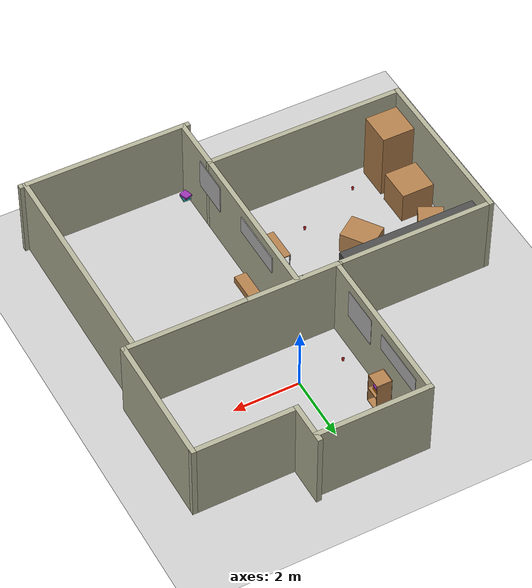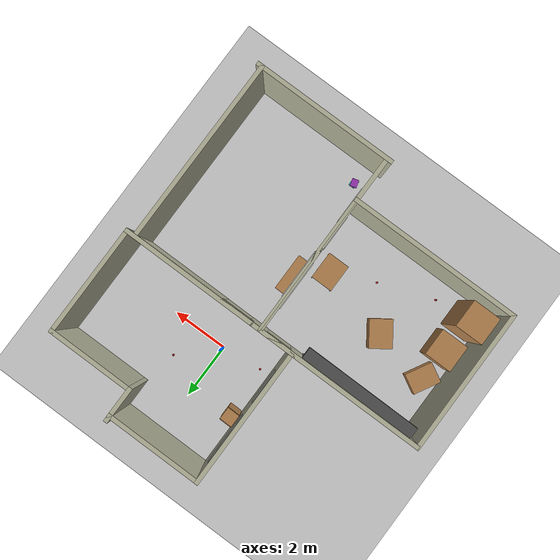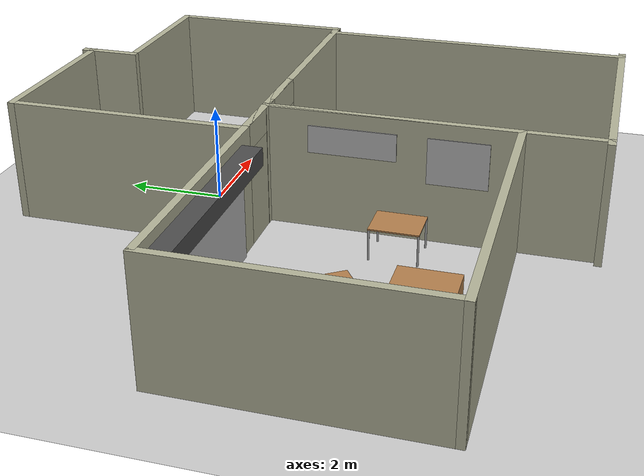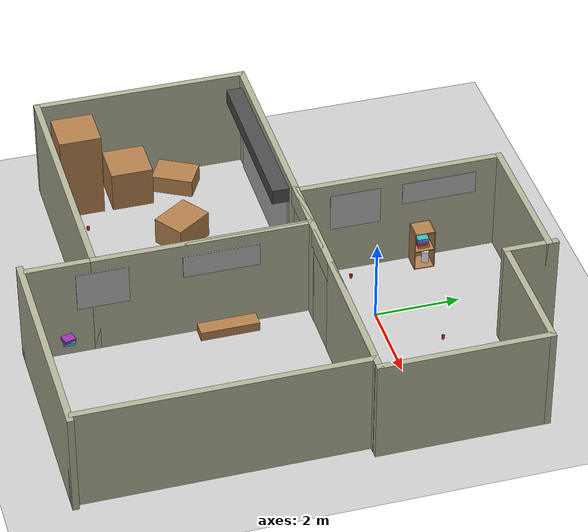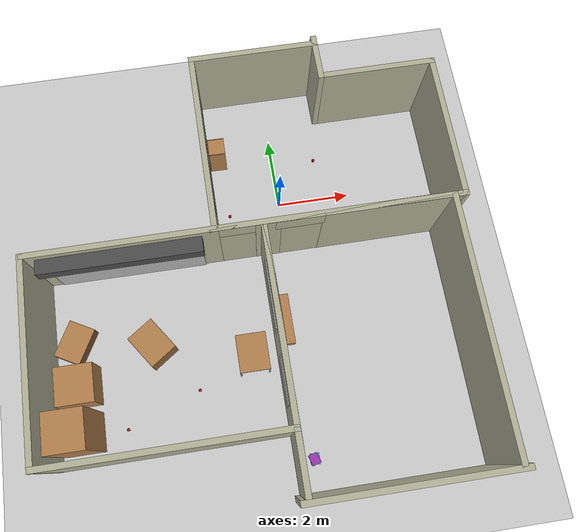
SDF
<sdf version="1.6">
 <world name="default">
  <model name="ground_plane">
   <static>1</static>
   <link name="link">
    <collision name="collision">
     <geometry><plane><normal>0 0 1</normal><size>20 20</size></plane></geometry>
     <surface>
      <contact><collide_bitmask>65535</collide_bitmask></contact>
      <friction><ode><mu>400</mu><mu2>50</mu2></ode></friction>
     </surface>
    </collision>
    <visual name="visual">
     <cast_shadows>0</cast_shadows>
     <geometry><plane><normal>0 0 1</normal><size>20 20</size></plane></geometry>
     <material>
      <script><uri>file://media/materials/scripts/gazebo.material</uri><name>Gazebo/Grey</name></script>
     </material>
    </visual>
   </link>
  </model>
  <model name="kitchen_living_room_walls">
   <pose>1.30504 1.07916 0 0 -0 0</pose>
   <link name="Wall_14">
    <collision name="Wall_14_Collision">
     <geometry><box><size>5 0.15 2.5</size></box></geometry>
     <pose>0 0 1.25 0 -0 0</pose>
    </collision>
    <visual name="Wall_14_Visual">
     <pose>0 0 1.25 0 -0 0</pose>
     <geometry><box><size>5 0.15 2.5</size></box></geometry>
     <material>
      <script><uri>file://media/materials/scripts/gazebo.material</uri><name>Gazebo/Residential</name></script>
      <ambient>1 1 1 1</ambient>
     </material>
     <meta><layer>0</layer></meta>
    </visual>
    <pose>-3.175 0 0 0 -0 -1.5708</pose>
   </link>
   <link name="Wall_15">
    <collision name="Wall_15_Collision">
     <geometry><box><size>6.5 0.15 2.5</size></box></geometry>
     <pose>0 0 1.25 0 -0 0</pose>
    </collision>
    <visual name="Wall_15_Visual">
     <pose>0 0 1.25 0 -0 0</pose>
     <geometry><box><size>6.5 0.15 2.5</size></box></geometry>
     <material>
      <script><uri>file://media/materials/scripts/gazebo.material</uri><name>Gazebo/Residential</name></script>
      <ambient>1 1 1 1</ambient>
     </material>
     <meta><layer>0</layer></meta>
    </visual>
    <pose>0 -2.425 0 0 -0 0</pose>
   </link>
   <link name="Wall_16">
    <collision name="Wall_16_Collision">
     <geometry><box><size>4 0.15 2.5</size></box></geometry>
     <pose>0 0 1.25 0 -0 0</pose>
    </collision>
    <visual name="Wall_16_Visual">
     <pose>0 0 1.25 0 -0 0</pose>
     <geometry><box><size>4 0.15 2.5</size></box></geometry>
     <material>
      <script><uri>file://media/materials/scripts/gazebo.material</uri><name>Gazebo/Residential</name></script>
      <ambient>1 1 1 1</ambient>
     </material>
     <meta><layer>0</layer></meta>
    </visual>
    <pose>3.175 -0.5 0 0 -0 1.5708</pose>
   </link>
   <link name="Wall_17">
    <collision name="Wall_17_Collision">
     <geometry><box><size>3 0.15 2.5</size></box></geometry>
     <pose>0 0 1.25 0 -0 0</pose>
    </collision>
    <visual name="Wall_17_Visual">
     <pose>0 0 1.25 0 -0 0</pose>
     <geometry><box><size>3 0.15 2.5</size></box></geometry>
     <material>
      <script><uri>file://media/materials/scripts/gazebo.material</uri><name>Gazebo/Residential</name></script>
      <ambient>1 1 1 1</ambient>
     </material>
     <meta><layer>0</layer></meta>
    </visual>
    <pose>1.75 1.425 0 0 -0 3.14159</pose>
   </link>
   <link name="Wall_19">
    <collision name="Wall_19_Collision">
     <geometry><box><size>3.5 0.15 2.5</size></box></geometry>
     <pose>0 0 1.25 0 -0 0</pose>
    </collision>
    <visual name="Wall_19_Visual">
     <pose>0 0 1.25 0 -0 0</pose>
     <geometry><box><size>3.5 0.15 2.5</size></box></geometry>
     <material>
      <script><uri>file://media/materials/scripts/gazebo.material</uri><name>Gazebo/Residential</name></script>
      <ambient>1 1 1 1</ambient>
     </material>
     <meta><layer>0</layer></meta>
    </visual>
    <pose>-1.5 2.425 0 0 -0 0</pose>
   </link>
   <link name="Wall_20">
    <collision name="Wall_20_Collision">
     <geometry><box><size>1.3 0.15 2.5</size></box></geometry>
     <pose>0 0 1.25 0 -0 0</pose>
    </collision>
    <visual name="Wall_20_Visual">
     <pose>0 0 1.25 0 -0 0</pose>
     <geometry><box><size>1.3 0.15 2.5</size></box></geometry>
     <material>
      <script><uri>file://media/materials/scripts/gazebo.material</uri><name>Gazebo/Residential</name></script>
      <ambient>1 1 1 1</ambient>
     </material>
     <meta><layer>0</layer></meta>
    </visual>
    <pose>0.175 2 0 0 -0 -1.5708</pose>
   </link>
   <static>1</static>
  </model>
  <model name="cabinet">
   <static>1</static>
   <link name="cabinet_bottom_plate">
    <inertial>
     <pose>0 0 -1 0 -0 0</pose>
     <inertia><ixx>2.05</ixx><ixy>0</ixy><ixz>0</ixz><iyy>2.05</iyy><iyz>0</iyz><izz>2.05</izz></inertia>
     <mass>25</mass>
    </inertial>
    <collision name="cabinet_bottom_plate_geom">
     <pose>0 0 0.01 0 -0 0</pose>
     <geometry><box><size>0.45 0.45 0.02</size></box></geometry>
    </collision>
    <visual name="cabinet_bottom_plate_geom_visual">
     <pose>0 0 0.01 0 -0 0</pose>
     <geometry><box><size>0.45 0.45 0.02</size></box></geometry>
     <material>
      <script><uri>file://media/materials/scripts/gazebo.material</uri><name>Gazebo/Wood</name></script>
     </material>
    </visual>
    <collision name="cabinet_bottom_plate_geom_cabinet_back_plate">
     <pose>0.235 0 0.51 0 -0 0</pose>
     <geometry><box><size>0.02 0.45 1.02</size></box></geometry>
    </collision>
    <visual name="cabinet_bottom_plate_geom_cabinet_back_plate_visual">
     <pose>0.235 0 0.51 0 -0 0</pose>
     <geometry><box><size>0.02 0.45 1.02</size></box></geometry>
     <material>
      <script><uri>file://media/materials/scripts/gazebo.material</uri><name>Gazebo/Wood</name></script>
     </material>
    </visual>
    <collision name="cabinet_bottom_plate_geom_cabinet_left_plate">
     <pose>0 0.235 0.51 0 -0 0</pose>
     <geometry><box><size>0.45 0.02 1.02</size></box></geometry>
    </collision>
    <visual name="cabinet_bottom_plate_geom_cabinet_left_plate_visual">
     <pose>0 0.235 0.51 0 -0 0</pose>
     <geometry><box><size>0.45 0.02 1.02</size></box></geometry>
     <material>
      <script><uri>file://media/materials/scripts/gazebo.material</uri><name>Gazebo/Wood</name></script>
     </material>
    </visual>
    <collision name="cabinet_bottom_plate_geom_cabinet_middle_plate">
     <pose>0 0 0.51 0 -0 0</pose>
     <geometry><box><size>0.45 0.45 0.02</size></box></geometry>
    </collision>
    <visual name="cabinet_bottom_plate_geom_cabinet_middle_plate_visual">
     <pose>0 0 0.51 0 -0 0</pose>
     <geometry><box><size>0.45 0.45 0.02</size></box></geometry>
     <material>
      <script><uri>file://media/materials/scripts/gazebo.material</uri><name>Gazebo/Wood</name></script>
     </material>
    </visual>
    <collision name="cabinet_bottom_plate_geom_cabinet_right_plate">
     <pose>0 -0.235 0.51 0 -0 0</pose>
     <geometry><box><size>0.45 0.02 1.02</size></box></geometry>
    </collision>
    <visual name="cabinet_bottom_plate_geom_cabinet_right_plate_visual">
     <pose>0 -0.235 0.51 0 -0 0</pose>
     <geometry><box><size>0.45 0.02 1.02</size></box></geometry>
     <material>
      <script><uri>file://media/materials/scripts/gazebo.material</uri><name>Gazebo/Wood</name></script>
     </material>
    </visual>
    <collision name="cabinet_bottom_plate_geom_cabinet_top_plate">
     <pose>0 0 1.01 0 -0 0</pose>
     <geometry><box><size>0.45 0.45 0.02</size></box></geometry>
    </collision>
    <visual name="cabinet_bottom_plate_geom_cabinet_top_plate_visual">
     <pose>0 0 1.01 0 -0 0</pose>
     <geometry><box><size>0.45 0.45 0.02</size></box></geometry>
     <material>
      <script><uri>file://media/materials/scripts/gazebo.material</uri><name>Gazebo/Wood</name></script>
     </material>
    </visual>
    <velocity_decay><linear>0</linear><angular>0</angular></velocity_decay>
   </link>
   <pose>-1.54168 1.59926 0 0 -0 3.12905</pose>
  </model>
  <model name="cup_glass_test_2">
   <link name="link_0">
    <inertial>
     <mass>0.0510344</mass>
     <inertia>
      <ixx>5.22719e-05</ixx>
      <ixy>0</ixy>
      <ixz>0</ixz>
      <iyy>5.22719e-05</iyy>
      <iyz>0</iyz>
      <izz>3.65038e-05</izz>
     </inertia>
     <pose>0 0 0.048 0 -0 0</pose>
    </inertial>
    <visual name="visual">
     <geometry><mesh><uri>model://cup_glass_test/meshes/cup_glass.dae</uri><scale>1 1 1</scale></mesh></geometry>
     <material>
      <lighting>1</lighting>
      <script><uri>file://media/materials/scripts/gazebo.material</uri><name>Gazebo/Red</name></script>
     </material>
    </visual>
    <collision name="collision">
     <geometry><mesh><uri>model://cup_glass_test/meshes/cup_glass.dae</uri><scale>1 1 1</scale></mesh></geometry>
     <surface>
      <friction>
       <ode><mu>1</mu><mu2>1</mu2><fdir1>0 0 0</fdir1><slip1>0</slip1><slip2>0</slip2></ode>
       <torsional>
        <coefficient>1</coefficient>
        <patch_radius>0</patch_radius>
        <surface_radius>0</surface_radius>
        <use_patch_radius>1</use_patch_radius>
        <ode><slip>0</slip></ode>
       </torsional>
      </friction>
      <bounce><restitution_coefficient>0</restitution_coefficient><threshold>1e+06</threshold></bounce>
      <contact>
       <collide_without_contact>0</collide_without_contact>
       <collide_without_contact_bitmask>1</collide_without_contact_bitmask>
       <collide_bitmask>1</collide_bitmask>
       <ode>
        <soft_cfm>0</soft_cfm>
        <soft_erp>0.2</soft_erp>
        <kp>1e+13</kp>
        <kd>1</kd>
        <max_vel>0.01</max_vel>
        <min_depth>0</min_depth>
       </ode>
       <bullet>
        <split_impulse>1</split_impulse>
        <split_impulse_penetration_threshold>-0.01</split_impulse_penetration_threshold>
        <soft_cfm>0</soft_cfm>
        <soft_erp>0.2</soft_erp>
        <kp>1e+13</kp>
        <kd>1</kd>
       </bullet>
      </contact>
     </surface>
    </collision>
   </link>
   <static>0</static>
   <pose>1.21724 1.22054 -0.000684 -0.01444 -0.014343 1.15451</pose>
  </model>
  <model name="cup_glass_test_3">
   <link name="link_0">
    <inertial>
     <mass>0.0510344</mass>
     <inertia>
      <ixx>5.22719e-05</ixx>
      <ixy>0</ixy>
      <ixz>0</ixz>
      <iyy>5.22719e-05</iyy>
      <iyz>0</iyz>
      <izz>3.65038e-05</izz>
     </inertia>
     <pose>0 0 0.048 0 -0 0</pose>
    </inertial>
    <visual name="visual">
     <geometry><mesh><uri>model://cup_glass_test/meshes/cup_glass.dae</uri><scale>1 1 1</scale></mesh></geometry>
     <material>
      <lighting>1</lighting>
      <script><uri>file://media/materials/scripts/gazebo.material</uri><name>Gazebo/Red</name></script>
     </material>
    </visual>
    <collision name="collision">
     <geometry><mesh><uri>model://cup_glass_test/meshes/cup_glass.dae</uri><scale>1 1 1</scale></mesh></geometry>
     <surface>
      <friction>
       <ode><mu>1</mu><mu2>1</mu2><fdir1>0 0 0</fdir1><slip1>0</slip1><slip2>0</slip2></ode>
       <torsional>
        <coefficient>1</coefficient>
        <patch_radius>0</patch_radius>
        <surface_radius>0</surface_radius>
        <use_patch_radius>1</use_patch_radius>
        <ode><slip>0</slip></ode>
       </torsional>
      </friction>
      <bounce><restitution_coefficient>0</restitution_coefficient><threshold>1e+06</threshold></bounce>
      <contact>
       <collide_without_contact>0</collide_without_contact>
       <collide_without_contact_bitmask>1</collide_without_contact_bitmask>
       <collide_bitmask>1</collide_bitmask>
       <ode>
        <soft_cfm>0</soft_cfm>
        <soft_erp>0.2</soft_erp>
        <kp>1e+13</kp>
        <kd>1</kd>
        <max_vel>0.01</max_vel>
        <min_depth>0</min_depth>
       </ode>
       <bullet>
        <split_impulse>1</split_impulse>
        <split_impulse_penetration_threshold>-0.01</split_impulse_penetration_threshold>
        <soft_cfm>0</soft_cfm>
        <soft_erp>0.2</soft_erp>
        <kp>1e+13</kp>
        <kd>1</kd>
       </bullet>
      </contact>
     </surface>
    </collision>
   </link>
   <static>0</static>
   <pose>-1.43676 -0.152813 -0.000684 -0.014465 -0.014205 1.24896</pose>
  </model>
  <model name="unit_box_1">
   <pose>-1.56462 1.68692 0.166864 -2e-06 -2e-06 -0.308094</pose>
   <link name="link">
    <inertial>
     <mass>1</mass>
     <inertia>
      <ixx>0.166667</ixx>
      <ixy>0</ixy>
      <ixz>0</ixz>
      <iyy>0.166667</iyy>
      <iyz>0</iyz>
      <izz>0.166667</izz>
     </inertia>
    </inertial>
    <collision name="collision"><geometry><box><size>0.157314 0.16474 0.293728</size></box></geometry></collision>
    <visual name="visual">
     <geometry><box><size>0.157314 0.16474 0.293728</size></box></geometry>
     <material>
      <script><name>Gazebo/White</name><uri>file://media/materials/scripts/gazebo.material</uri></script>
     </material>
    </visual>
   </link>
  </model>
  <model name="unit_box">
   <pose>-1.52024 1.60563 0.554916 0 0 -0.006062</pose>
   <link name="link">
    <inertial>
     <mass>1</mass>
     <inertia>
      <ixx>0.166667</ixx>
      <ixy>0</ixy>
      <ixz>0</ixz>
      <iyy>0.166667</iyy>
      <iyz>0</iyz>
      <izz>0.166667</izz>
     </inertia>
    </inertial>
    <collision name="collision"><geometry><box><size>0.230096 0.26666 0.069832</size></box></geometry></collision>
    <visual name="visual">
     <geometry><box><size>0.230096 0.26666 0.069832</size></box></geometry>
     <material>
      <script><name>Gazebo/Orange</name><uri>file://media/materials/scripts/gazebo.material</uri></script>
     </material>
    </visual>
   </link>
  </model>
  <model name="unit_box_clone_0">
   <pose>-1.58461 1.60891 0.694567 -4.7e-05 -3.7e-05 -0.035696</pose>
   <link name="link">
    <inertial>
     <mass>1</mass>
     <inertia>
      <ixx>0.166667</ixx>
      <ixy>0</ixy>
      <ixz>0</ixz>
      <iyy>0.166667</iyy>
      <iyz>0</iyz>
      <izz>0.166667</izz>
     </inertia>
    </inertial>
    <collision name="collision">
     <geometry><box><size>0.230096 0.266659 0.069832</size></box></geometry>
    </collision>
    <visual name="visual">
     <geometry><box><size>0.230096 0.266659 0.069832</size></box></geometry>
     <material>
      <script><name>Gazebo/Turquoise</name><uri>file://media/materials/scripts/gazebo.material</uri></script>
     </material>
    </visual>
   </link>
  </model>
  <model name="unit_box_clone_1">
   <pose>-1.53781 1.59018 0.624738 -4.3e-05 -4.3e-05 -0.021511</pose>
   <link name="link">
    <inertial>
     <mass>1</mass>
     <inertia>
      <ixx>0.166667</ixx>
      <ixy>0</ixy>
      <ixz>0</ixz>
      <iyy>0.166667</iyy>
      <iyz>0</iyz>
      <izz>0.166667</izz>
     </inertia>
    </inertial>
    <collision name="collision">
     <geometry><box><size>0.230096 0.266659 0.069832</size></box></geometry>
    </collision>
    <visual name="visual">
     <geometry><box><size>0.230096 0.266659 0.069832</size></box></geometry>
     <material>
      <script><name>Gazebo/Purple</name><uri>file://media/materials/scripts/gazebo.material</uri></script>
     </material>
    </visual>
   </link>
  </model>
  <model name="ufrgs_poster">
   <link name="link">
    <visual name="visual">
     <geometry><box><size>0.03 1.20154 0.949467</size></box></geometry>
     <material>
      <script>
       <uri>model://ufrgs_poster/material/script</uri>
       <uri>model://ufrgs_poster/material/textures</uri>
       <name>Custom/ufrgs_logo</name>
      </script>
     </material>
    </visual>
   </link>
   <static>1</static>
   <pose>-1.8013 0.035665 1.71741 0 -0 0</pose>
  </model>
  <model name="uio_poster">
   <link name="link">
    <visual name="visual">
     <geometry><box><size>0.03 1.76931 0.56609</size></box></geometry>
     <material>
      <script>
       <uri>model://uio_poster/material/script</uri>
       <uri>model://uio_poster/material/textures</uri>
       <name>Custom/uio_logo</name>
      </script>
     </material>
    </visual>
   </link>
   <static>1</static>
   <pose>-1.79613 2.0446 1.91099 0 -0 0</pose>
  </model>
  <model name="table">
   <static>1</static>
   <link name="link">
    <collision name="surface">
     <pose>0 0 0.8 0 -0 0</pose>
     <geometry><box><size>1 0.8 0.03</size></box></geometry>
    </collision>
    <visual name="visual1">
     <pose>0 0 0.8 0 -0 0</pose>
     <geometry><box><size>1 0.8 0.03</size></box></geometry>
     <material>
      <script><uri>file://media/materials/scripts/gazebo.material</uri><name>Gazebo/Wood</name></script>
     </material>
    </visual>
    <collision name="front_left_leg">
     <pose>0.48 0.38 0.4 0 -0 0</pose>
     <geometry><cylinder><radius>0.02</radius><length>0.8</length></cylinder></geometry>
    </collision>
    <visual name="front_left_leg">
     <pose>0.48 0.38 0.4 0 -0 0</pose>
     <geometry><cylinder><radius>0.02</radius><length>0.8</length></cylinder></geometry>
     <material>
      <script><uri>file://media/materials/scripts/gazebo.material</uri><name>Gazebo/Grey</name></script>
     </material>
    </visual>
    <collision name="front_right_leg">
     <pose>0.48 -0.38 0.4 0 -0 0</pose>
     <geometry><cylinder><radius>0.02</radius><length>0.8</length></cylinder></geometry>
    </collision>
    <visual name="front_right_leg">
     <pose>0.48 -0.38 0.4 0 -0 0</pose>
     <geometry><cylinder><radius>0.02</radius><length>0.8</length></cylinder></geometry>
     <material>
      <script><uri>file://media/materials/scripts/gazebo.material</uri><name>Gazebo/Grey</name></script>
     </material>
    </visual>
    <collision name="back_right_leg">
     <pose>-0.48 -0.38 0.4 0 -0 0</pose>
     <geometry><cylinder><radius>0.02</radius><length>0.8</length></cylinder></geometry>
    </collision>
    <visual name="back_right_leg">
     <pose>-0.48 -0.38 0.4 0 -0 0</pose>
     <geometry><cylinder><radius>0.02</radius><length>0.8</length></cylinder></geometry>
     <material>
      <script><uri>file://media/materials/scripts/gazebo.material</uri><name>Gazebo/Grey</name></script>
     </material>
    </visual>
    <collision name="back_left_leg">
     <pose>-0.48 0.38 0.4 0 -0 0</pose>
     <geometry><cylinder><radius>0.02</radius><length>0.8</length></cylinder></geometry>
    </collision>
    <visual name="back_left_leg">
     <pose>-0.48 0.38 0.4 0 -0 0</pose>
     <geometry><cylinder><radius>0.02</radius><length>0.8</length></cylinder></geometry>
     <material>
      <script><uri>file://media/materials/scripts/gazebo.material</uri><name>Gazebo/Grey</name></script>
     </material>
    </visual>
    <velocity_decay><linear>0</linear><angular>0</angular></velocity_decay>
   </link>
   <pose>-1.3695 -4.20071 -0.158695 0 0 -1.57177</pose>
  </model>
  <model name="bedroom_external_wall">
   <pose>1.775 -4.65242 0 0 -0 0</pose>
   <link name="Wall_0">
    <collision name="Wall_0_Collision">
     <geometry><box><size>6.75 0.15 2.5</size></box></geometry>
     <pose>0 0 1.25 0 -0 0</pose>
    </collision>
    <visual name="Wall_0_Visual">
     <pose>0 0 1.25 0 -0 0</pose>
     <geometry><box><size>6.75 0.15 2.5</size></box></geometry>
     <material>
      <script><uri>file://media/materials/scripts/gazebo.material</uri><name>Gazebo/Residential</name></script>
      <ambient>1 1 1 1</ambient>
     </material>
     <meta><layer>0</layer></meta>
    </visual>
    <pose>-2.425 0 0 0 -0 1.5708</pose>
   </link>
   <link name="Wall_2">
    <collision name="Wall_2_Collision">
     <geometry><box><size>5.25 0.15 2.5</size></box></geometry>
     <pose>0 0 1.25 0 -0 0</pose>
    </collision>
    <visual name="Wall_2_Visual">
     <pose>0 0 1.25 0 -0 0</pose>
     <geometry><box><size>5.25 0.15 2.5</size></box></geometry>
     <material>
      <script><uri>file://media/materials/scripts/gazebo.material</uri><name>Gazebo/Residential</name></script>
      <ambient>1 1 1 1</ambient>
     </material>
     <meta><layer>0</layer></meta>
    </visual>
    <pose>0 -3.3 0 0 -0 0</pose>
   </link>
   <link name="Wall_6">
    <collision name="Wall_6_Collision">
     <geometry><box><size>3.55 0.15 2.5</size></box></geometry>
     <pose>0.85 0 1.25 0 -0 0</pose>
    </collision>
    <visual name="Wall_6_Visual">
     <pose>0.85 0 1.25 0 -0 0</pose>
     <geometry><box><size>3.55 0.15 2.5</size></box></geometry>
     <material>
      <script><uri>file://media/materials/scripts/gazebo.material</uri><name>Gazebo/Residential</name></script>
      <ambient>1 1 1 1</ambient>
     </material>
     <meta><layer>0</layer></meta>
    </visual>
    <collision name="Wall_6_Collision_up">
     <geometry><box><size>1.25 0.15 0.5</size></box></geometry>
     <pose>-1.5 0 2.25 0 -0 0</pose>
    </collision>
    <visual name="Wall_6_Visual_up">
     <pose>-1.5 0 2.25 0 -0 0</pose>
     <geometry><box><size>1.25 0.15 0.5</size></box></geometry>
     <material>
      <script><uri>file://media/materials/scripts/gazebo.material</uri><name>Gazebo/Residential</name></script>
      <ambient>1 1 1 1</ambient>
     </material>
     <meta><layer>0</layer></meta>
    </visual>
    <collision name="Wall_6_Collision_small">
     <geometry><box><size>0.65 0.15 2.5</size></box></geometry>
     <pose>-2.31 0 1.25 0 -0 0</pose>
    </collision>
    <visual name="Wall_6_Visual_small">
     <pose>-2.31 0 1.25 0 -0 0</pose>
     <geometry><box><size>0.65 0.15 2.5</size></box></geometry>
     <material>
      <script><uri>file://media/materials/scripts/gazebo.material</uri><name>Gazebo/Residential</name></script>
      <ambient>1 1 1 1</ambient>
     </material>
     <meta><layer>0</layer></meta>
    </visual>
    <pose>0 3.3 0 0 -0 0</pose>
   </link>
   <link name="Wall_7">
    <collision name="Wall_7_Collision">
     <geometry><box><size>6.75 0.15 2.5</size></box></geometry>
     <pose>0 0 1.25 0 -0 0</pose>
    </collision>
    <visual name="Wall_7_Visual">
     <pose>0 0 1.25 0 -0 0</pose>
     <geometry><box><size>6.75 0.15 2.5</size></box></geometry>
     <material>
      <script><uri>file://media/materials/scripts/gazebo.material</uri><name>Gazebo/Residential</name></script>
      <ambient>1 1 1 1</ambient>
     </material>
     <meta><layer>0</layer></meta>
    </visual>
    <pose>2.425 0 0 0 -0 -1.5708</pose>
   </link>
   <static>1</static>
  </model>
  <model name="ufrgs_poster_clone">
   <link name="link">
    <visual name="visual">
     <geometry><box><size>0.03 1.20154 0.949467</size></box></geometry>
     <material>
      <script>
       <uri>model://ufrgs_poster/material/script</uri>
       <uri>model://ufrgs_poster/material/textures</uri>
       <name>Custom/ufrgs_logo</name>
      </script>
     </material>
    </visual>
   </link>
   <static>1</static>
   <pose>-0.567822 -6.17374 1.71741 0 -0 0</pose>
  </model>
  <model name="uio_poster_clone">
   <link name="link">
    <visual name="visual">
     <geometry><box><size>0.03 1.76931 0.56609</size></box></geometry>
     <material>
      <script>
       <uri>model://uio_poster/material/script</uri>
       <uri>model://uio_poster/material/textures</uri>
       <name>Custom/uio_logo</name>
      </script>
     </material>
    </visual>
   </link>
   <static>1</static>
   <pose>-0.563959 -3.45572 1.91099 0 -0 0</pose>
  </model>
  <model name="garage_external_wall">
   <pose>-3.64936 -1.34584 0 0 0 -1.57082</pose>
   <link name="Wall_0">
    <pose>0 0 0 0 -0 1.5708</pose>
    <visual name="Wall_0_Visual_0">
     <pose>-0.585 0 1.25 0 -0 0</pose>
     <geometry><box><size>4.9 0.15 2.5</size></box></geometry>
     <material>
      <script><uri>file://media/materials/scripts/gazebo.material</uri><name>Gazebo/Residential</name></script>
      <ambient>1 1 1 1</ambient>
     </material>
     <meta><layer>0</layer></meta>
    </visual>
    <collision name="Wall_0_Collision_0">
     <geometry><box><size>4.9 0.15 2.5</size></box></geometry>
     <pose>-0.585 0 1.25 0 -0 0</pose>
    </collision>
    <visual name="Wall_0_Visual_1">
     <pose>3 0 1.25 0 -0 0</pose>
     <geometry><box><size>0.15 0.15 2.5</size></box></geometry>
     <material>
      <script><uri>file://media/materials/scripts/gazebo.material</uri><name>Gazebo/Residential</name></script>
      <ambient>1 1 1 1</ambient>
     </material>
     <meta><layer>0</layer></meta>
    </visual>
    <collision name="Wall_0_Collision_1">
     <geometry><box><size>0.15 0.15 2.5</size></box></geometry>
     <pose>3 0 1.25 0 -0 0</pose>
    </collision>
    <visual name="Wall_0_Visual_2">
     <pose>2.325 0 2.25 0 -0 0</pose>
     <geometry><box><size>1.35 0.15 0.5</size></box></geometry>
     <material>
      <script><uri>file://media/materials/scripts/gazebo.material</uri><name>Gazebo/Residential</name></script>
      <ambient>1 1 1 1</ambient>
     </material>
     <meta><layer>0</layer></meta>
    </visual>
    <collision name="Wall_0_Collision_2">
     <geometry><box><size>1.35 0.15 0.5</size></box></geometry>
     <pose>2.325 0 2.25 0 -0 0</pose>
    </collision>
   </link>
   <link name="Wall_1">
    <pose>0 0 0 0 -0 1.5708</pose>
    <visual name="Wall_1_Visual">
     <pose>0 -5 1.25 0 -0 0</pose>
     <geometry><box><size>6.15 0.15 2.5</size></box></geometry>
     <material>
      <script><uri>file://media/materials/scripts/gazebo.material</uri><name>Gazebo/Residential</name></script>
      <ambient>1 1 1 1</ambient>
     </material>
     <meta><layer>0</layer></meta>
    </visual>
    <collision name="Wall_1_Collision">
     <geometry><box><size>6.15 0.15 2.5</size></box></geometry>
     <pose>0 -5 1.25 0 -0 0</pose>
    </collision>
   </link>
   <link name="Wall_2">
    <pose>0 0 0 0 -0 1.5708</pose>
    <visual name="Wall_2_Visual">
     <pose>3 -2.5 1.25 0 -0 0</pose>
     <geometry><box><size>0.15 5.15 2.5</size></box></geometry>
     <material>
      <script><uri>file://media/materials/scripts/gazebo.material</uri><name>Gazebo/Residential</name></script>
      <ambient>1 1 1 1</ambient>
     </material>
     <meta><layer>0</layer></meta>
    </visual>
    <collision name="Wall_2_Collision">
     <geometry><box><size>0.15 5.15 2.5</size></box></geometry>
     <pose>3 -2.5 1.25 0 -0 0</pose>
    </collision>
   </link>
   <link name="Wall_3">
    <pose>0 0 0 0 -0 1.5708</pose>
    <visual name="Wall_3_Visual">
     <pose>-3 -2.5 1.25 0 -0 0</pose>
     <geometry><box><size>0.15 5.15 2.5</size></box></geometry>
     <material>
      <script><uri>file://media/materials/scripts/gazebo.material</uri><name>Gazebo/Residential</name></script>
      <ambient>1 1 1 1</ambient>
     </material>
     <meta><layer>0</layer></meta>
    </visual>
    <collision name="Wall_3_Collision">
     <geometry><box><size>0.15 5.15 2.5</size></box></geometry>
     <pose>-3 -2.5 1.25 0 -0 0</pose>
    </collision>
   </link>
   <static>1</static>
  </model>
  <model name="garage_door_poster2">
   <link name="link">
    <visual name="visual">
     <geometry><box><size>0.05 4 2</size></box></geometry>
     <material>
      <script>
       <uri>model://garage_door_poster/material/script</uri>
       <uri>model://garage_door_poster/material/textures</uri>
       <name>Custom/garage_door</name>
      </script>
     </material>
    </visual>
   </link>
   <link name="link_0">
    <inertial>
     <mass>0.631708</mass>
     <inertia>
      <ixx>0.913425</ixx>
      <ixy>0</ixy>
      <ixz>0</ixz>
      <iyy>0.0161823</iyy>
      <iyz>0</iyz>
      <izz>0.915671</izz>
     </inertia>
    </inertial>
    <pose>0.186516 0 1.12272 0 -0 0</pose>
    <visual name="visual">
     <geometry><box><size>0.418365 4.1496 0.363828</size></box></geometry>
     <material>
      <lighting>1</lighting>
      <script><uri>file://media/materials/scripts/gazebo.material</uri><name>Gazebo/DarkGrey</name></script>
     </material>
    </visual>
    <collision name="collision">
     <geometry><box><size>0.418365 4.15 0.363828</size></box></geometry>
     <surface>
      <friction>
       <ode><mu>1</mu><mu2>1</mu2><fdir1>0 0 0</fdir1><slip1>0</slip1><slip2>0</slip2></ode>
       <torsional>
        <coefficient>1</coefficient>
        <patch_radius>0</patch_radius>
        <surface_radius>0</surface_radius>
        <use_patch_radius>1</use_patch_radius>
        <ode><slip>0</slip></ode>
       </torsional>
      </friction>
      <bounce><restitution_coefficient>0</restitution_coefficient><threshold>1e+06</threshold></bounce>
      <contact>
       <collide_without_contact>0</collide_without_contact>
       <collide_without_contact_bitmask>1</collide_without_contact_bitmask>
       <collide_bitmask>1</collide_bitmask>
       <ode>
        <soft_cfm>0</soft_cfm>
        <soft_erp>0.2</soft_erp>
        <kp>1e+13</kp>
        <kd>1</kd>
        <max_vel>0.01</max_vel>
        <min_depth>0</min_depth>
       </ode>
       <bullet>
        <split_impulse>1</split_impulse>
        <split_impulse_penetration_threshold>-0.01</split_impulse_penetration_threshold>
        <soft_cfm>0</soft_cfm>
        <soft_erp>0.2</soft_erp>
        <kp>1e+13</kp>
        <kd>1</kd>
       </bullet>
      </contact>
     </surface>
    </collision>
   </link>
   <static>1</static>
   <pose>-4.28362 -1.41933 0.989733 0 0 -1.57551</pose>
  </model>
  <model name="unit_box_2">
   <pose>-5.96981 -5.57911 1.07724 -1e-06 1e-06 -0.002123</pose>
   <link name="link">
    <inertial>
     <mass>1</mass>
     <inertia>
      <ixx>0.166667</ixx>
      <ixy>0</ixy>
      <ixz>0</ixz>
      <iyy>0.166667</iyy>
      <iyz>0</iyz>
      <izz>0.166667</izz>
     </inertia>
    </inertial>
    <collision name="collision"><geometry><box><size>1 1 2.15448</size></box></geometry></collision>
    <visual name="visual">
     <geometry><box><size>1 1 2.15448</size></box></geometry>
     <material>
      <script><name>Gazebo/Wood</name><uri>file://media/materials/scripts/gazebo.material</uri></script>
     </material>
    </visual>
   </link>
  </model>
  <model name="unit_box_3">
   <pose>-5.95381 -4.38003 0.499995 -1e-05 -0 -0</pose>
   <link name="link">
    <inertial>
     <mass>1</mass>
     <inertia>
      <ixx>0.166667</ixx>
      <ixy>0</ixy>
      <ixz>0</ixz>
      <iyy>0.166667</iyy>
      <iyz>0</iyz>
      <izz>0.166667</izz>
     </inertia>
    </inertial>
    <collision name="collision"><geometry><box><size>1 1 1</size></box></geometry></collision>
    <visual name="visual">
     <geometry><box><size>1 1 1</size></box></geometry>
     <material>
      <script><name>Gazebo/Wood</name><uri>file://media/materials/scripts/gazebo.material</uri></script>
     </material>
    </visual>
   </link>
  </model>
  <model name="unit_box_4">
   <pose>-5.99427 -3.1996 0.218635 0 0 -0.502215</pose>
   <link name="link">
    <inertial>
     <mass>1</mass>
     <inertia>
      <ixx>0.166667</ixx>
      <ixy>0</ixy>
      <ixz>0</ixz>
      <iyy>0.166667</iyy>
      <iyz>0</iyz>
      <izz>0.166667</izz>
     </inertia>
    </inertial>
    <collision name="collision"><geometry><box><size>0.726119 1 0.437271</size></box></geometry></collision>
    <visual name="visual">
     <geometry><box><size>0.726119 1 0.437271</size></box></geometry>
     <material>
      <script><name>Gazebo/Wood</name><uri>file://media/materials/scripts/gazebo.material</uri></script>
     </material>
    </visual>
   </link>
  </model>
  <model name="table_clone">
   <static>1</static>
   <link name="link">
    <collision name="surface">
     <pose>0 0 0.4 0 -0 0</pose>
     <geometry><box><size>1 0.8 0.83</size></box></geometry>
    </collision>
    <visual name="visual1">
     <pose>0 0 0.4 0 -0 0</pose>
     <geometry><box><size>1 0.8 0.83</size></box></geometry>
     <material>
      <script><uri>file://media/materials/scripts/gazebo.material</uri><name>Gazebo/Wood</name></script>
     </material>
    </visual>
    <collision name="front_left_leg">
     <pose>0.48 0.38 0.4 0 -0 0</pose>
     <geometry><cylinder><radius>0.02</radius><length>0.8</length></cylinder></geometry>
    </collision>
    <visual name="front_left_leg">
     <pose>0.48 0.38 0.4 0 -0 0</pose>
     <geometry><cylinder><radius>0.02</radius><length>0.8</length></cylinder></geometry>
     <material>
      <script><uri>file://media/materials/scripts/gazebo.material</uri><name>Gazebo/Grey</name></script>
     </material>
    </visual>
    <collision name="front_right_leg">
     <pose>0.48 -0.38 0.4 0 -0 0</pose>
     <geometry><cylinder><radius>0.02</radius><length>0.8</length></cylinder></geometry>
    </collision>
    <visual name="front_right_leg">
     <pose>0.48 -0.38 0.4 0 -0 0</pose>
     <geometry><cylinder><radius>0.02</radius><length>0.8</length></cylinder></geometry>
     <material>
      <script><uri>file://media/materials/scripts/gazebo.material</uri><name>Gazebo/Grey</name></script>
     </material>
    </visual>
    <collision name="back_right_leg">
     <pose>-0.48 -0.38 0.4 0 -0 0</pose>
     <geometry><cylinder><radius>0.02</radius><length>0.8</length></cylinder></geometry>
    </collision>
    <visual name="back_right_leg">
     <pose>-0.48 -0.38 0.4 0 -0 0</pose>
     <geometry><cylinder><radius>0.02</radius><length>0.8</length></cylinder></geometry>
     <material>
      <script><uri>file://media/materials/scripts/gazebo.material</uri><name>Gazebo/Grey</name></script>
     </material>
    </visual>
    <collision name="back_left_leg">
     <pose>-0.48 0.38 0.4 0 -0 0</pose>
     <geometry><cylinder><radius>0.02</radius><length>0.8</length></cylinder></geometry>
    </collision>
    <visual name="back_left_leg">
     <pose>-0.48 0.38 0.4 0 -0 0</pose>
     <geometry><cylinder><radius>0.02</radius><length>0.8</length></cylinder></geometry>
     <material>
      <script><uri>file://media/materials/scripts/gazebo.material</uri><name>Gazebo/Grey</name></script>
     </material>
    </visual>
    <velocity_decay><linear>0</linear><angular>0</angular></velocity_decay>
   </link>
   <pose>-3.95189 -3.55185 -0.158695 0 0 -0.966318</pose>
  </model>
  <model name="ufrgs_poster_clone_0">
   <link name="link">
    <visual name="visual">
     <geometry><box><size>0.03 1.20154 0.949467</size></box></geometry>
     <material>
      <script>
       <uri>model://ufrgs_poster/material/script</uri>
       <uri>model://ufrgs_poster/material/textures</uri>
       <name>Custom/ufrgs_logo</name>
      </script>
     </material>
    </visual>
   </link>
   <static>1</static>
   <pose>-0.733467 -5.19241 1.71741 0 -0 0</pose>
  </model>
  <model name="uio_poster_clone_0">
   <link name="link">
    <visual name="visual">
     <geometry><box><size>0.03 1.76931 0.56609</size></box></geometry>
     <material>
      <script>
       <uri>model://uio_poster/material/script</uri>
       <uri>model://uio_poster/material/textures</uri>
       <name>Custom/uio_logo</name>
      </script>
     </material>
    </visual>
   </link>
   <static>1</static>
   <pose>-0.738864 -3.11371 1.91099 0 -0 0</pose>
  </model>
  <model name="cup_glass_test_6">
   <link name="link_0">
    <inertial>
     <mass>0.0510344</mass>
     <inertia>
      <ixx>5.22719e-05</ixx>
      <ixy>0</ixy>
      <ixz>0</ixz>
      <iyy>5.22719e-05</iyy>
      <iyz>0</iyz>
      <izz>3.65038e-05</izz>
     </inertia>
     <pose>0 0 0.048 0 -0 0</pose>
    </inertial>
    <visual name="visual">
     <geometry><mesh><uri>model://cup_glass_test/meshes/cup_glass.dae</uri><scale>1 1 1</scale></mesh></geometry>
     <material>
      <lighting>1</lighting>
      <script><uri>file://media/materials/scripts/gazebo.material</uri><name>Gazebo/Red</name></script>
     </material>
    </visual>
    <collision name="collision">
     <geometry><mesh><uri>model://cup_glass_test/meshes/cup_glass.dae</uri><scale>1 1 1</scale></mesh></geometry>
     <surface>
      <friction>
       <ode><mu>1</mu><mu2>1</mu2><fdir1>0 0 0</fdir1><slip1>0</slip1><slip2>0</slip2></ode>
       <torsional>
        <coefficient>1</coefficient>
        <patch_radius>0</patch_radius>
        <surface_radius>0</surface_radius>
        <use_patch_radius>1</use_patch_radius>
        <ode><slip>0</slip></ode>
       </torsional>
      </friction>
      <bounce><restitution_coefficient>0</restitution_coefficient><threshold>1e+06</threshold></bounce>
      <contact>
       <collide_without_contact>0</collide_without_contact>
       <collide_without_contact_bitmask>1</collide_without_contact_bitmask>
       <collide_bitmask>1</collide_bitmask>
       <ode>
        <soft_cfm>0</soft_cfm>
        <soft_erp>0.2</soft_erp>
        <kp>1e+13</kp>
        <kd>1</kd>
        <max_vel>0.01</max_vel>
        <min_depth>0</min_depth>
       </ode>
       <bullet>
        <split_impulse>1</split_impulse>
        <split_impulse_penetration_threshold>-0.01</split_impulse_penetration_threshold>
        <soft_cfm>0</soft_cfm>
        <soft_erp>0.2</soft_erp>
        <kp>1e+13</kp>
        <kd>1</kd>
       </bullet>
      </contact>
     </surface>
    </collision>
   </link>
   <static>0</static>
   <pose>-2.88534 -4.9007 -0.000682 -0.014452 -0.014272 1.55974</pose>
  </model>
  <model name="cup_glass_test_7">
   <link name="link_0">
    <inertial>
     <mass>0.0510344</mass>
     <inertia>
      <ixx>5.22719e-05</ixx>
      <ixy>0</ixy>
      <ixz>0</ixz>
      <iyy>5.22719e-05</iyy>
      <iyz>0</iyz>
      <izz>3.65038e-05</izz>
     </inertia>
     <pose>0 0 0.048 0 -0 0</pose>
    </inertial>
    <visual name="visual">
     <geometry><mesh><uri>model://cup_glass_test/meshes/cup_glass.dae</uri><scale>1 1 1</scale></mesh></geometry>
     <material>
      <lighting>1</lighting>
      <script><uri>file://media/materials/scripts/gazebo.material</uri><name>Gazebo/Red</name></script>
     </material>
    </visual>
    <collision name="collision">
     <geometry><mesh><uri>model://cup_glass_test/meshes/cup_glass.dae</uri><scale>1 1 1</scale></mesh></geometry>
     <surface>
      <friction>
       <ode><mu>1</mu><mu2>1</mu2><fdir1>0 0 0</fdir1><slip1>0</slip1><slip2>0</slip2></ode>
       <torsional>
        <coefficient>1</coefficient>
        <patch_radius>0</patch_radius>
        <surface_radius>0</surface_radius>
        <use_patch_radius>1</use_patch_radius>
        <ode><slip>0</slip></ode>
       </torsional>
      </friction>
      <bounce><restitution_coefficient>0</restitution_coefficient><threshold>1e+06</threshold></bounce>
      <contact>
       <collide_without_contact>0</collide_without_contact>
       <collide_without_contact_bitmask>1</collide_without_contact_bitmask>
       <collide_bitmask>1</collide_bitmask>
       <ode>
        <soft_cfm>0</soft_cfm>
        <soft_erp>0.2</soft_erp>
        <kp>1e+13</kp>
        <kd>1</kd>
        <max_vel>0.01</max_vel>
        <min_depth>0</min_depth>
       </ode>
       <bullet>
        <split_impulse>1</split_impulse>
        <split_impulse_penetration_threshold>-0.01</split_impulse_penetration_threshold>
        <soft_cfm>0</soft_cfm>
        <soft_erp>0.2</soft_erp>
        <kp>1e+13</kp>
        <kd>1</kd>
       </bullet>
      </contact>
     </surface>
    </collision>
   </link>
   <static>0</static>
   <pose>-4.85221 -5.62236 -0.000684 -0.014525 -0.014261 2.05921</pose>
  </model>
  <model name="unit_box_clone_1_clone">
   <pose>-0.247426 -7.07254 0.714746 1.6e-05 -6e-06 0.291007</pose>
   <link name="link">
    <inertial>
     <mass>1</mass>
     <inertia>
      <ixx>0.166667</ixx>
      <ixy>0</ixy>
      <ixz>0</ixz>
      <iyy>0.166667</iyy>
      <iyz>0</iyz>
      <izz>0.166667</izz>
     </inertia>
    </inertial>
    <collision name="collision">
     <geometry><box><size>0.230096 0.266659 0.069832</size></box></geometry>
    </collision>
    <visual name="visual">
     <geometry><box><size>0.230096 0.266659 0.069832</size></box></geometry>
     <material>
      <script><name>Gazebo/Purple</name><uri>file://media/materials/scripts/gazebo.material</uri></script>
     </material>
    </visual>
   </link>
  </model>
  <model name="unit_box_clone_0_clone">
   <pose>-0.234857 -7.06848 0.644916 -1e-06 1e-06 -0.031295</pose>
   <link name="link">
    <inertial>
     <mass>1</mass>
     <inertia>
      <ixx>0.166667</ixx>
      <ixy>0</ixy>
      <ixz>0</ixz>
      <iyy>0.166667</iyy>
      <iyz>0</iyz>
      <izz>0.166667</izz>
     </inertia>
    </inertial>
    <collision name="collision">
     <geometry><box><size>0.230096 0.266659 0.069832</size></box></geometry>
    </collision>
    <visual name="visual">
     <geometry><box><size>0.230096 0.266659 0.069832</size></box></geometry>
     <material>
      <script><name>Gazebo/Turquoise</name><uri>file://media/materials/scripts/gazebo.material</uri></script>
     </material>
    </visual>
   </link>
  </model>
  <model name="unit_box_5">
   <pose>-0.372859 -3.3717 0.112046 0 -0 0</pose>
   <link name="link">
    <inertial>
     <mass>1</mass>
     <inertia>
      <ixx>0.166667</ixx>
      <ixy>0</ixy>
      <ixz>0</ixz>
      <iyy>0.166667</iyy>
      <iyz>0</iyz>
      <izz>0.166667</izz>
     </inertia>
    </inertial>
    <collision name="collision"><geometry><box><size>0.364618 1.37528 0.224092</size></box></geometry></collision>
    <visual name="visual">
     <geometry><box><size>0.364618 1.37528 0.224092</size></box></geometry>
     <material>
      <script><name>Gazebo/Wood</name><uri>file://media/materials/scripts/gazebo.material</uri></script>
     </material>
    </visual>
   </link>
  </model>
  <model name="unit_box_6">
   <pose>-0.372859 -3.3717 0.112046 0 -0 0</pose>
   <link name="link">
    <inertial>
     <mass>1</mass>
     <inertia>
      <ixx>0.166667</ixx>
      <ixy>0</ixy>
      <ixz>0</ixz>
      <iyy>0.166667</iyy>
      <iyz>0</iyz>
      <izz>0.166667</izz>
     </inertia>
    </inertial>
    <collision name="collision"><geometry><box><size>0.364618 1.37528 0.224092</size></box></geometry></collision>
    <visual name="visual">
     <geometry><box><size>0.364618 1.37528 0.224092</size></box></geometry>
     <material>
      <script><name>Gazebo/Wood</name><uri>file://media/materials/scripts/gazebo.material</uri></script>
     </material>
    </visual>
   </link>
  </model>
 </world>
</sdf>
